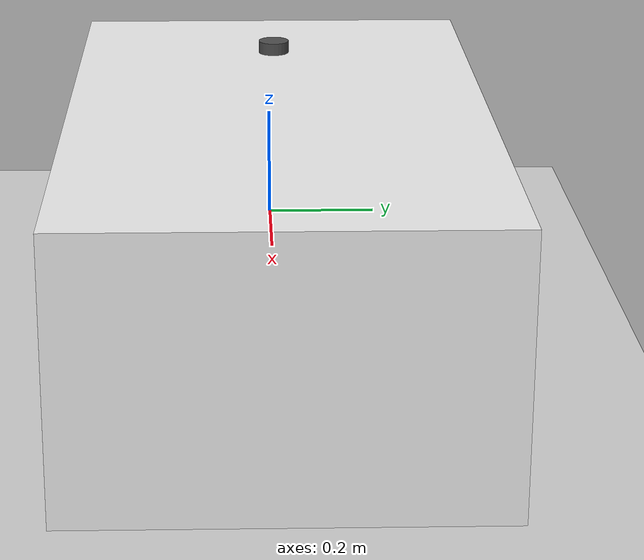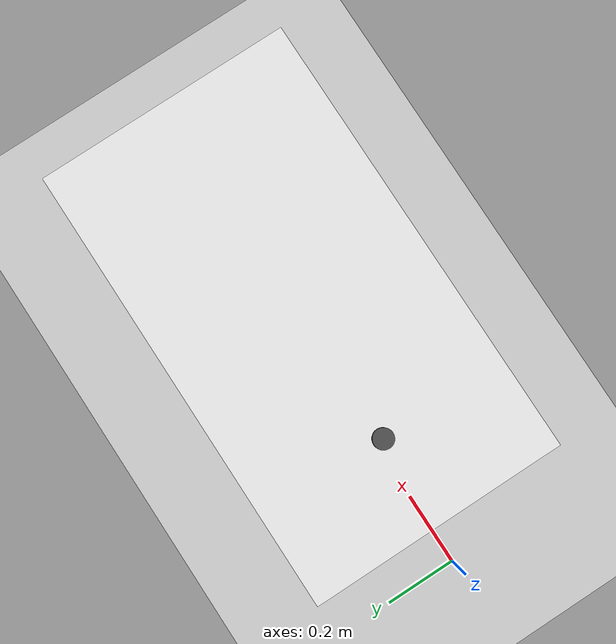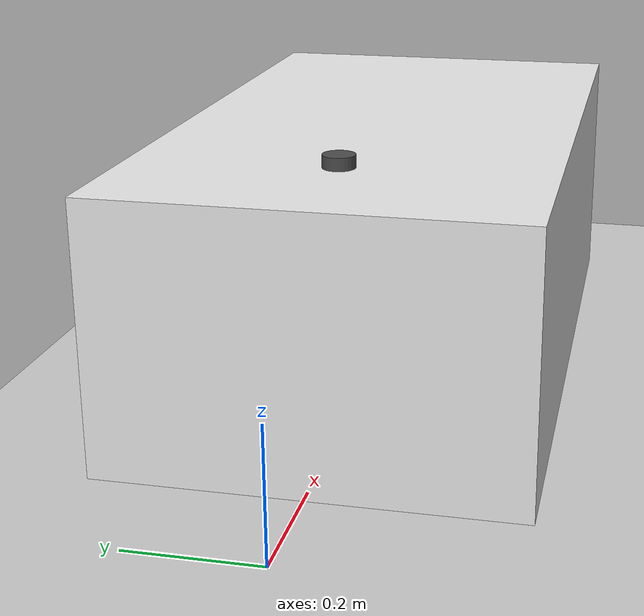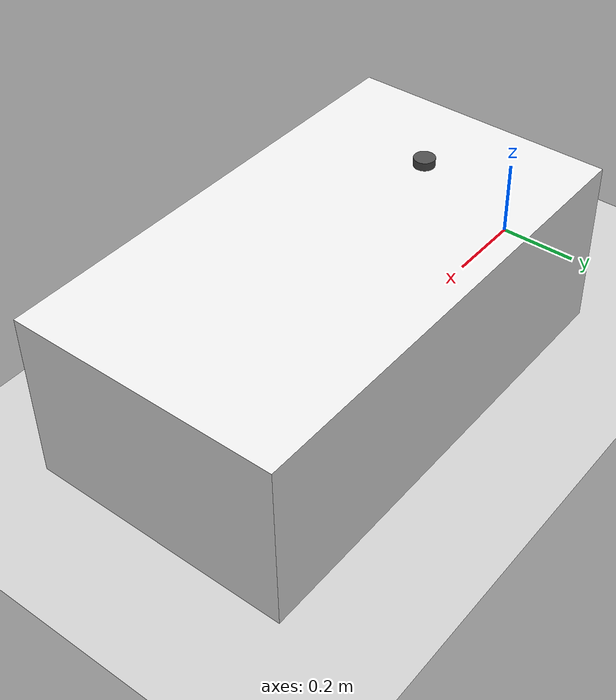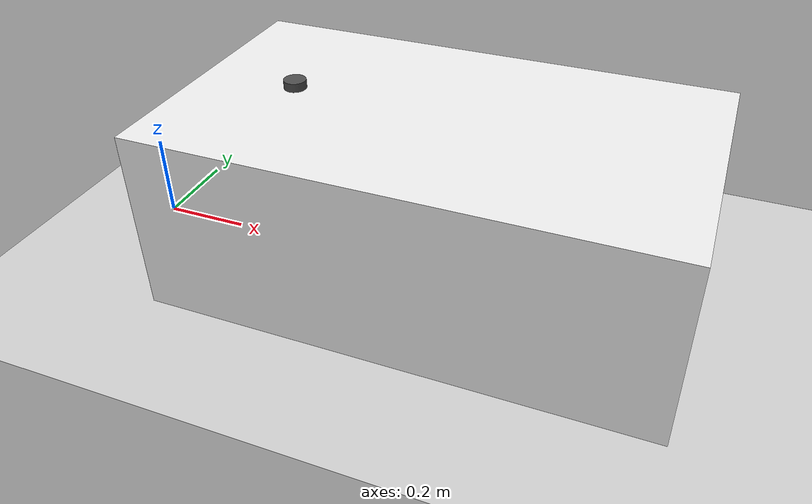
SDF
<?xml version="1.0" ?>
<sdf version="1.5">
  <world name="panda_slide">
    <!--A global light source-->
    <include>
      <uri>model://sun</uri>
    </include>
    <!--A ground plane-->
    <include>
      <uri>model://ground_plane</uri>
    </include>
    <!--A platform-->
    <include>
      <uri>model://long_platform</uri>
      <pose>0.73986775 0 0.209911 0 0 0</pose>
    </include>
    <!--A puck-->
    <include>
      <uri>model://puck</uri>
      <pose>0.4 0 0.419672 0 0 0</pose>
    </include>
    <!--Camera settings-->
    <gui fullscreen='0'>
      <camera name='user_camera'>
        <pose>1.59801 -1.66211 1.29545 -0 0.419643 2.23219</pose>
        <view_controller>orbit</view_controller>
        <projection_type>perspective</projection_type>
      </camera>
    </gui>
    <!--Load Panda joint fixer Gazebo world plugin-->
    <plugin name="panda_joint_locker" filename="libpanda_gazebo.so"/>
  </world>
</sdf>

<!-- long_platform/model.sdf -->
<sdf version='1.7'>
  <model name='long_platform'>
    <link name='link'>
      <inertial>
        <mass>10</mass>
        <inertia>
          <ixx>0.166667</ixx>
          <ixy>0</ixy>
          <ixz>0</ixz>
          <iyy>0.166667</iyy>
          <iyz>0</iyz>
          <izz>0.166667</izz>
        </inertia>
      </inertial>
      <self_collide>0</self_collide>
      <enable_wind>0</enable_wind>
      <kinematic>0</kinematic>
      <pose>0 0 0 0 -0 0</pose>
      <visual name='visual'>
        <pose>0 0 0 0 -0 0</pose>
        <geometry>
          <box>
            <size>1.1328925 0.642049 0.419823</size>
          </box>
        </geometry>
        <material>
          <script>
            <uri>file://media/materials/scripts/gazebo.material</uri>
            <name>Gazebo/White</name>
          </script>
          <shader type='pixel'/>
        </material>
        <transparency>0</transparency>
        <cast_shadows>1</cast_shadows>
      </visual>
      <collision name='collision'>
        <laser_retro>0</laser_retro>
        <max_contacts>10</max_contacts>
        <pose>0 0 0 0 -0 0</pose>
        <geometry>
          <box>
            <size>1.1328925 0.642049 0.419823</size>
          </box>
        </geometry>
        <surface>
          <friction>
            <ode>
              <mu>1</mu>
              <mu2>1</mu2>
              <fdir1>0 0 0</fdir1>
              <slip1>0</slip1>
              <slip2>0</slip2>
            </ode>
            <torsional>
              <coefficient>1</coefficient>
              <patch_radius>0</patch_radius>
              <surface_radius>0</surface_radius>
              <use_patch_radius>1</use_patch_radius>
              <ode>
                <slip>0</slip>
              </ode>
            </torsional>
          </friction>
          <bounce>
            <restitution_coefficient>0</restitution_coefficient>
            <threshold>1e+06</threshold>
          </bounce>
          <contact>
            <collide_without_contact>0</collide_without_contact>
            <collide_without_contact_bitmask>1</collide_without_contact_bitmask>
            <collide_bitmask>1</collide_bitmask>
            <ode>
              <soft_cfm>0</soft_cfm>
              <soft_erp>0.2</soft_erp>
              <kp>1e+13</kp>
              <kd>1</kd>
              <max_vel>0.01</max_vel>
              <min_depth>0</min_depth>
            </ode>
            <bullet>
              <split_impulse>1</split_impulse>
              <split_impulse_penetration_threshold>-0.01</split_impulse_penetration_threshold>
              <soft_cfm>0</soft_cfm>
              <soft_erp>0.2</soft_erp>
              <kp>1e+13</kp>
              <kd>1</kd>
            </bullet>
          </contact>
        </surface>
      </collision>
    </link>
    <static>1</static>
    <allow_auto_disable>1</allow_auto_disable>
  </model>
</sdf>

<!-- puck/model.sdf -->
<sdf version='1.7'>
  <model name='puck'>
    <link name='link'>
      <inertial>
        <pose>0.0 0.0 0.01 0 -0 0</pose>
        <!--NOTE: Uses Polyethylene density to calculate the mass
        see https://en.wikipedia.org/wiki/Polyethylene
        -->
        <mass>0.037699111843077525</mass>
        <inertia>
          <ixx>7.14712329e-06</ixx>
          <ixy>0</ixy>
          <ixz>0</ixz>
          <iyy>7.14712329e-06</iyy>
          <iyz>0</iyz>
          <izz>1.17809725e-05</izz>
        </inertia>
      </inertial>
      <visual name='visual'>
        <pose>0.0 0.0 0.01 0 -0 0</pose>
        <geometry>
          <cylinder>
            <radius>0.025</radius>
            <length>0.02</length>
          </cylinder>
        </geometry>
        <material>
          <script>
            <uri>file://media/materials/scripts/gazebo.material</uri>
            <name>Gazebo/DarkGrey</name>
          </script>
          <shader type='pixel'/>
        </material>
      </visual>
      <collision name='collision'>
        <pose>0.0 0.0 0.01 0 -0 0</pose>
        <geometry>
          <cylinder>
            <radius>0.025</radius>
            <length>0.02</length>
          </cylinder>
        </geometry>
        <surface>
          <!--NOTE: Uses dynamic friction of clean dry plastic cube on a plastic surface
          (i.e. Polyethylene) see https://www.engineeringtoolbox.com/friction-coefficients-d_778.html
          -->
          <friction>
            <ode>
              <mu>0.2</mu>
              <mu2>0.2</mu2>
            </ode>
          </friction>
          <contact>
            <collide_bitmask>1</collide_bitmask>
            <ode>
              <kp>1e+06</kp>
              <kd>1e+06</kd>
              <max_vel>1</max_vel>
              <min_depth>0.002</min_depth>
            </ode>
            <bullet>
              <kp>1e+06</kp>
              <kd>1e+06</kd>
            </bullet>
          </contact>
        </surface>
      </collision>
    </link>
  </model>
</sdf>
